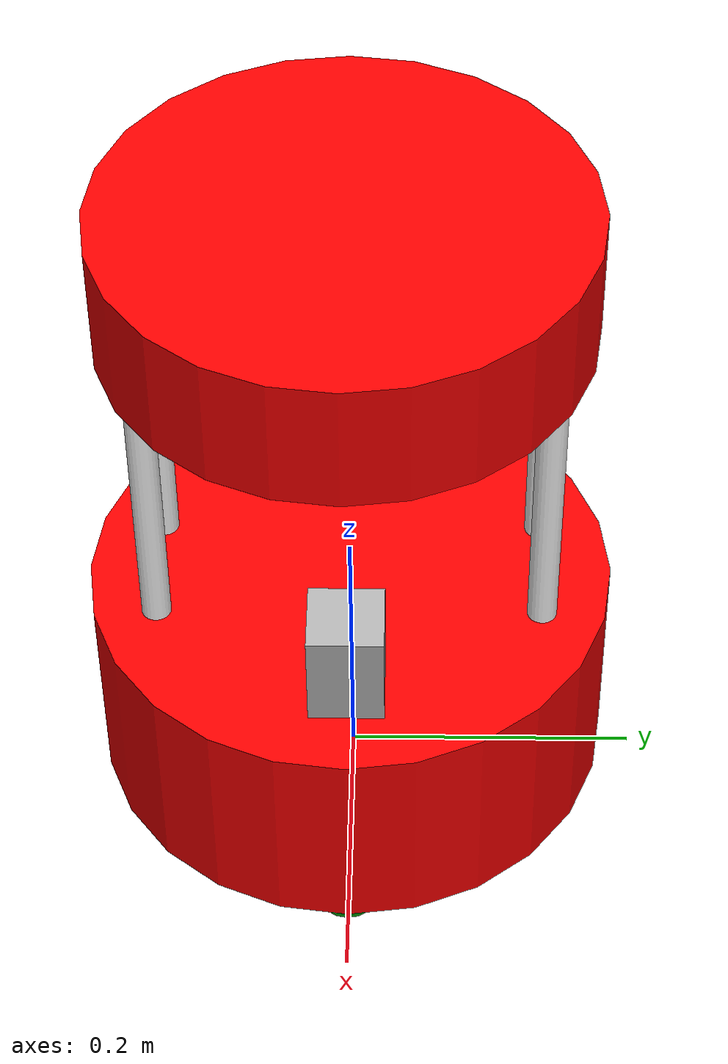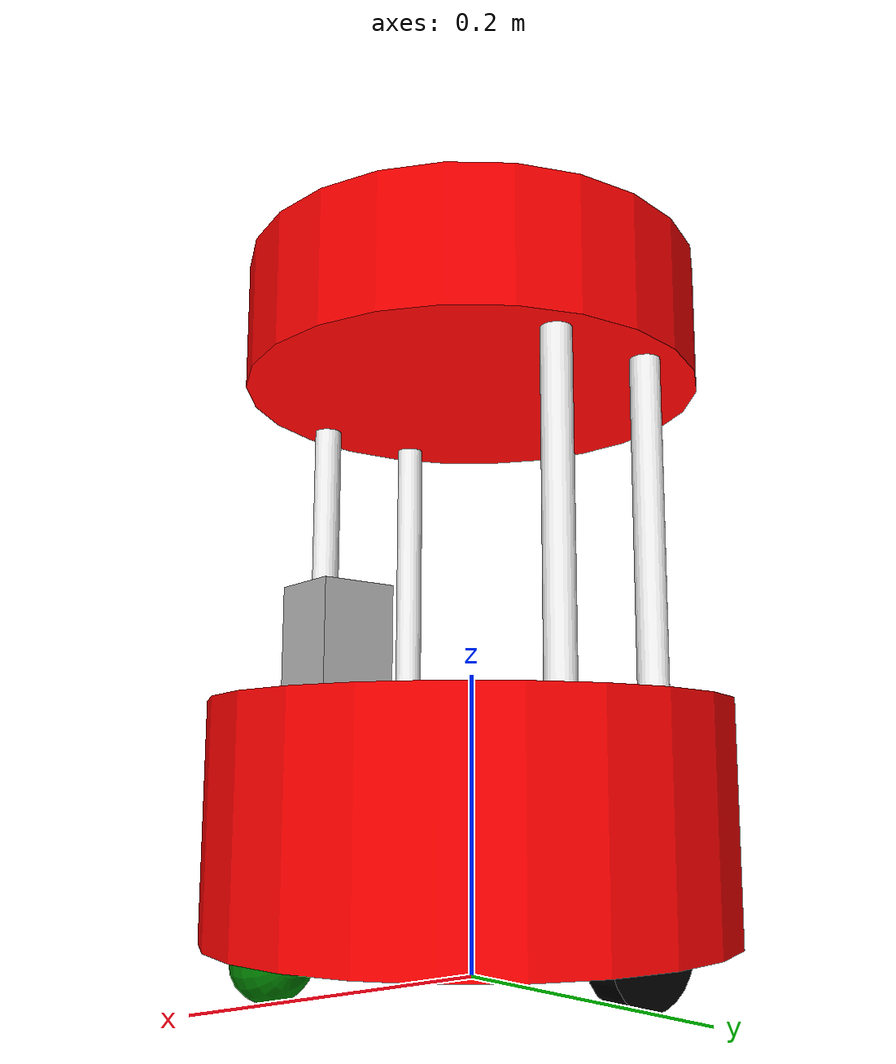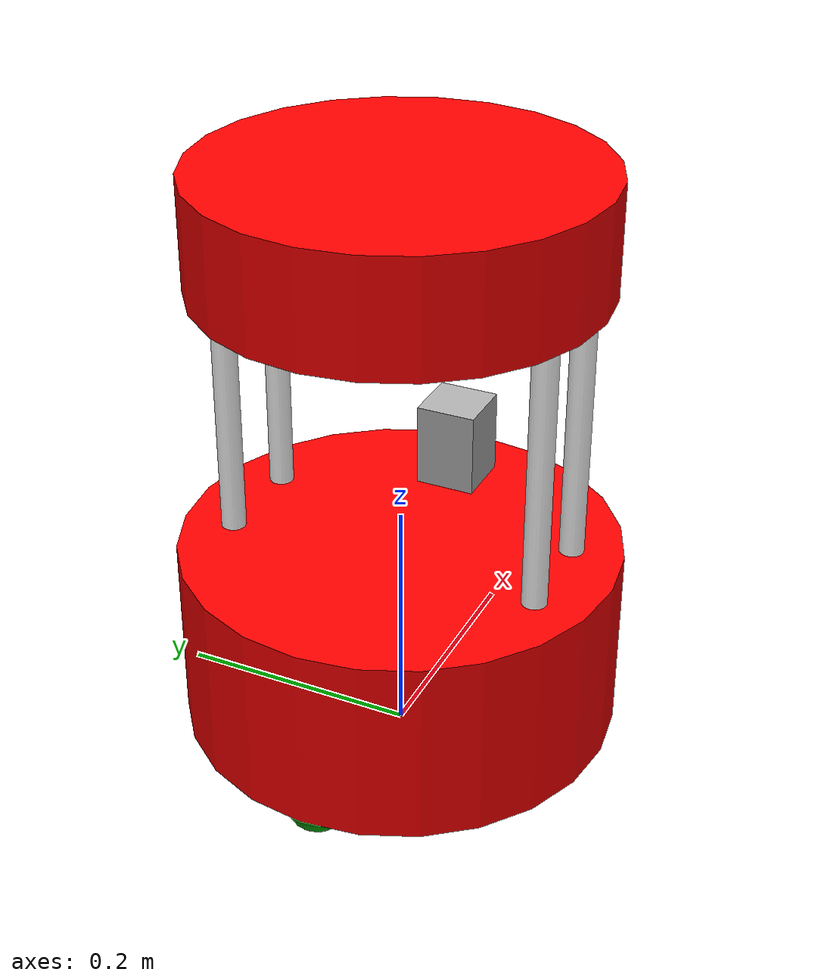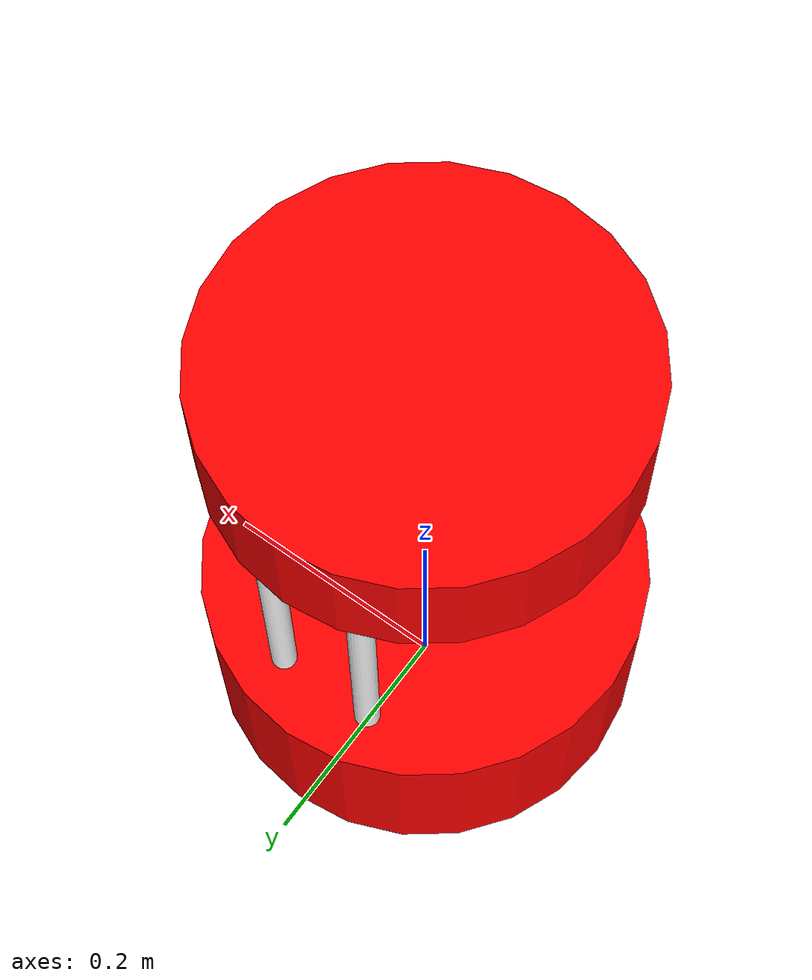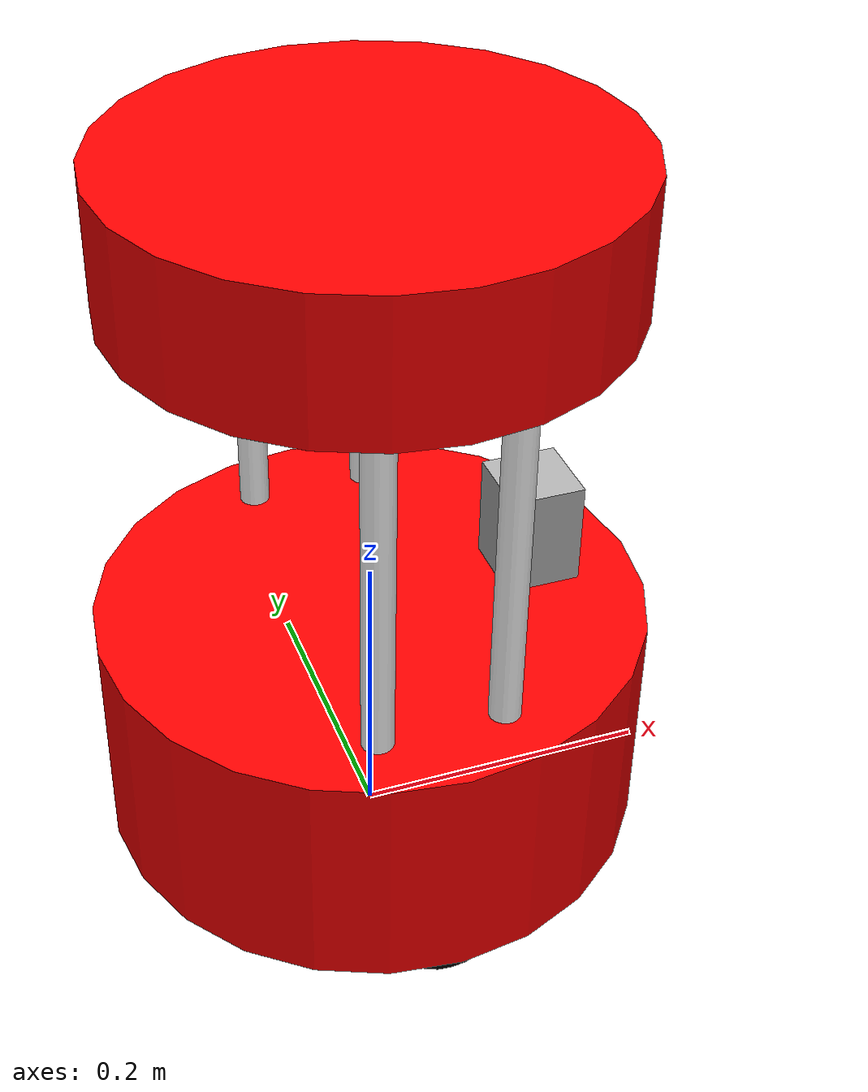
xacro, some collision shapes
<?xml version="1.0"?>
<robot xmlns:xacro="http://www.ros.org/wiki/xacro" name="barista_robot">

  <!-- Arguments -->
  <xacro:arg name="include_laser" default="true"/>
  <xacro:arg name="robot_name" default="rick"/>
  <xacro:arg name="body_color" default="red"/>
  <xacro:arg name="body_gz_material" default="Gazebo/Red"/>

  <!-- Properties -->
  <xacro:property name="robot_name" value="$(arg robot_name)" />
  <xacro:property name="body_color" value="$(arg body_color)" />
  <xacro:property name="body_gz_material" value="$(arg body_gz_material)" />

  <!-- Includes -->
  <xacro:include filename="$(find barista_robot_description)/xacro/materials.xacro" />
  <xacro:include filename="$(find barista_robot_description)/xacro/drive_wheel.xacro" />
  <xacro:include filename="$(find barista_robot_description)/xacro/caster_wheel.xacro" />
  <xacro:include filename="$(find barista_robot_description)/xacro/standoff_rod.xacro" />
  <xacro:include filename="$(find barista_robot_description)/xacro/cup_holder_tray.xacro" />
  <xacro:if value="$(arg include_laser)">
    <xacro:include filename="$(find barista_robot_description)/xacro/laser_scanner.xacro" />
  </xacro:if>

    <link name="base_footprint"/>

    <!-- Main Body-->
    <link name="base_link">
        <visual>
            <geometry>
                <cylinder length="0.155" radius="0.178"/>
            </geometry>
            <material name="${body_color}"/>
        </visual>
        <collision>
            <geometry>
                <cylinder length="0.155" radius="0.178"/>
            </geometry>
        </collision>
        <inertial>
            <mass value="8.0"/>
            <inertia ixx="0.07938466666666666" ixy="0" ixz="0" iyy="0.07938466666666666" iyz="0" izz="0.126736"/>
        </inertial>
    </link>

    <gazebo reference="base_link">
        <material>${body_gz_material}</material>
    </gazebo>

    <joint name="base_footprint_joint" type="fixed">
        <origin xyz="0 0 0.1025" rpy="0 0 0" />  <!-- Clearance 0.025 + Body Height 0.0775-->
        <parent link="base_footprint" />
        <child link="base_link" />
    </joint>

    <!-- Wheel Left -->
    <xacro:drive_wheel name="left_wheel" parent="base_link" xyz="0 0.15 -0.0673" />

    <!-- Wheel Right -->
    <xacro:drive_wheel name="right_wheel" parent="base_link" xyz="0 -0.15 -0.0673" />

    <!-- Front Caster Wheel -->
    <xacro:caster_wheel name="front_caster" parent="base_link" xyz="0.15 0 -0.0775" />

    <!-- Back Caster Wheel -->
    <xacro:caster_wheel name="back_caster" parent="base_link" xyz="-0.15 0 -0.0775" />

    <!-- Standoff Rods Left -->
    <xacro:standoff_rod name="left_front_standoff_rod"
        parent="base_link"
        xyz="0.04 0.13 0.1875"
        length="0.22"
        radius="0.01"
        />
    <xacro:standoff_rod name="left_back_standoff_rod"
        parent="base_link"
        xyz="-0.04 0.13 0.1875"
        length="0.22"
        radius="0.01"
        />
    <!-- Standoff Rods Right-->
    <xacro:standoff_rod name="right_front_standoff_rod"
        parent="base_link"
        xyz="0.04 -0.13 0.1875"
        length="0.22"
        radius="0.01"
        />
    <xacro:standoff_rod name="right_back_standoff_rod"
        parent="base_link"
        xyz="-0.04 -0.13 0.1875"
        length="0.22"
        radius="0.01"
        />

    <!-- Cup Holder Tray -->
    <xacro:cup_holder_tray name="cup_holder_tray"
        parent="base_link"
        xyz="0.0 0.0 0.3425"
        color="${body_color}"
        gz_material="${body_gz_material}" />

    <!-- Planar Laser Scanner -->
    <xacro:if value="$(arg include_laser)">
        <xacro:laser_scanner name="laser_scan" parent="base_link" xyz="0.11 0.0 0.0775" robot_name="${robot_name}" />
    </xacro:if>

    <!-- PLUGINS -->
    <!-- JOINT PUBLISHER -->
    <gazebo>
        <plugin name="barista_robot_joint_state" filename="libgazebo_ros_joint_state_publisher.so">
            <ros>
                <namespace>/${robot_name}</namespace>
                <remapping>~/out:=joint_states</remapping>
            </ros>
            <update_rate>30</update_rate>

            <joint_name>left_wheel_joint</joint_name>
            <joint_name>right_wheel_joint</joint_name>
            <joint_name>front_caster_yaw_joint</joint_name>
            <joint_name>back_caster_yaw_joint</joint_name>
            <joint_name>front_caster_roll_joint</joint_name>
            <joint_name>back_caster_roll_joint</joint_name>
            <joint_name>front_caster_pitch_joint</joint_name>
            <joint_name>back_caster_pitch_joint</joint_name>
        </plugin>
    </gazebo>

    <!-- Differential drive -->
    <gazebo>
        <plugin filename="libgazebo_ros_diff_drive.so" name="differential_drive_controller">
            <ros>
                <namespace>/${robot_name}</namespace>
                <remapping>/cmd_vel:=cmd_vel</remapping>
            </ros>
            <!-- wheels -->
            <left_joint>left_wheel_joint</left_joint>
            <right_joint>right_wheel_joint</right_joint>

            <!-- kinematics -->
            <wheel_separation>0.3</wheel_separation>
            <wheel_diameter>0.0704</wheel_diameter>

            <!-- limits -->
            <max_wheel_torque>10.0</max_wheel_torque>
            <max_wheel_acceleration>2.0</max_wheel_acceleration>

            <!-- output -->
            <publish_odom>true</publish_odom>
            <publish_odom_tf>true</publish_odom_tf>

            <odometry_frame>${robot_name}/odom</odometry_frame>
            <robot_base_frame>${robot_name}/base_footprint</robot_base_frame>
        </plugin>
    </gazebo>

</robot>

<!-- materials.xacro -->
<robot xmlns:xacro="http://www.ros.org/wiki/xacro">

    <material name="red">
        <color rgba="1.0 0.0 0.0 1"/>
    </material>

    <material name="blue">
      <color rgba="0.0 0.0 1.0 1"/>
    </material>

    <material name="black">
        <color rgba="0.0 0.0 0.0 1"/>
    </material>

    <material name="green_light">
      <color rgba="0.0 1.0 0.0 1"/>
    </material>

    <material name="green_dark">
        <color rgba="0.0 0.5 0.0 1"/>
    </material>

    <material name="white">
      <color rgba="1.0 1.0 1.0 1"/>
    </material>

</robot>

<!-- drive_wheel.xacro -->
<robot xmlns:xacro="http://www.ros.org/wiki/xacro">

    <xacro:property name="drive_wheel_radius" value="0.0352"/>
    <xacro:property name="drive_wheel_width" value="0.0206"/>
    <xacro:property name="drive_wheel_mass" value="0.5" />

    <!-- Drive Wheel Macro -->
    <xacro:macro name="drive_wheel" params="name parent xyz">
        <link name="${name}">
            <visual>
                <origin xyz="0 0 0" rpy="1.5707 0 0"/>
                <geometry>
                    <cylinder length="${drive_wheel_width}" radius="${drive_wheel_radius}"/>
                </geometry>
                <material name="black"/>
            </visual>
            <collision>
                <origin xyz="0 0 0" rpy="1.5707 0 0"/>
                <geometry>
                    <cylinder length="${drive_wheel_width}" radius="${drive_wheel_radius}"/>
                </geometry>
            </collision>
            <inertial>
                <origin xyz="0 0 0" rpy="1.5707 0 0"/>
                <mass value="${drive_wheel_mass}"/>
                <inertia
                    ixx="${(1.0/4.0)*drive_wheel_mass*drive_wheel_radius*drive_wheel_radius + (1.0/12.0)*drive_wheel_mass*drive_wheel_width*drive_wheel_width}"
                    ixy="0" ixz="0"
                    iyy="${(1.0/4.0)*drive_wheel_mass*drive_wheel_radius*drive_wheel_radius + (1.0/12.0)*drive_wheel_mass*drive_wheel_width*drive_wheel_width}" iyz="0"
                    izz="${(1.0/2.0)*drive_wheel_mass*drive_wheel_radius*drive_wheel_radius}"/>
            </inertial>
        </link>

        <gazebo reference="${name}">
            <kp>1000000000000000000000000000.0</kp>
            <kd>1000000000000000000000000000.0</kd>
            <mu1>0.8</mu1>
            <mu2>0.6</mu2>
            <material>Gazebo/Black</material>
        </gazebo>

        <joint name="${name}_joint" type="continuous">
            <origin xyz="${xyz}" rpy="0 0 0" />
            <parent link="${parent}" />
            <child link="${name}" />
            <axis xyz="0 1 0" />
            <limit effort="10000" velocity="1000"/>
            <dynamics damping="0.2" friction="1.0"/>
        </joint>
    </xacro:macro>
</robot>

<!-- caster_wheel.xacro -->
<robot xmlns:xacro="http://www.ros.org/wiki/xacro">

    <xacro:property name="caster_axle_radius" value="0.0045"/>
    <xacro:property name="caster_axle_length" value="0.001"/>
    <xacro:property name="caster_axle_mass" value="0.001"/>

    <xacro:property name="caster_wheel_radius" value="0.025"/>
    <xacro:property name="caster_wheel_mass" value="0.25"/>

    <!-- Caster Wheel Macro -->
    <xacro:macro name="caster_wheel" params="name xyz parent">
        <link name="${name}_yaw_link">
            <visual>
                <origin rpy="0 1.5707 1.5707" xyz="0 0 0"/>
                <geometry>
                  <cylinder length="${caster_axle_length}" radius="${caster_axle_radius}"/>
                </geometry>
                <material name="blue"/>
            </visual>

            <collision>
                <origin rpy="0 1.5707 1.5707" xyz="0 0 0"/>
                <geometry>
                   <cylinder length="${caster_axle_length}" radius="${caster_axle_radius}"/>
                </geometry>
            </collision>

            <inertial>
                <origin rpy="0 1.5707 1.5707" xyz="0 0 0"/>
                <mass value="${caster_axle_mass}"/>
                <inertia
                    ixx="${(1.0/12.0)*caster_axle_mass*(3*caster_axle_radius*caster_axle_radius + caster_axle_length*caster_axle_length)}"
                    ixy="0" ixz="0"
                    iyy="${(1.0/12.0)*caster_axle_mass*(3*caster_axle_radius*caster_axle_radius + caster_axle_length*caster_axle_length)}" iyz="0"
                    izz="${(1.0/2.0)*caster_axle_mass*caster_axle_radius*caster_axle_radius}"/>
            </inertial>
        </link>

        <gazebo reference="${name}_yaw_link">
            <material>Gazebo/Blue</material>
        </gazebo>

        <joint name="${name}_yaw_joint" type="continuous">
            <origin xyz="${xyz}" rpy="0 0 0" />
            <parent link="${parent}" />
            <child link="${name}_yaw_link" />
            <axis xyz="0 0 1" />
            <limit effort="1000.0" velocity="100.0" />
            <dynamics damping="0.00" friction="0.1"/>
        </joint>

        <link name="${name}_roll_link">
            <visual>
                <origin rpy="0 1.5707 1.5707" xyz="0 0 0"/>
                <geometry>
                    <cylinder length="${caster_axle_length}" radius="${caster_axle_radius}"/>
                </geometry>
                <material name="red"/>
            </visual>

            <collision>
                <origin rpy="0 1.5707 1.5707" xyz="0 0 0"/>
                <geometry>
                    <cylinder length="${caster_axle_length}" radius="${caster_axle_radius}"/>
                </geometry>
            </collision>

            <inertial>
                <origin rpy="0 1.5707 1.5707" xyz="0 0 0"/>
                <mass value="${caster_axle_mass}"/>
                <inertia
                    ixx="${(1.0/12.0)*caster_axle_mass*(3*caster_axle_radius*caster_axle_radius + caster_axle_length*caster_axle_length)}"
                    ixy="0" ixz="0"
                    iyy="${(1.0/12.0)*caster_axle_mass*(3*caster_axle_radius*caster_axle_radius + caster_axle_length*caster_axle_length)}" iyz="0"
                    izz="${(1.0/2.0)*caster_axle_mass*caster_axle_radius*caster_axle_radius}"/>
            </inertial>
        </link>
        <gazebo reference="${name}_roll_link">
            <material>Gazebo/Red</material>
        </gazebo>

        <joint name="${name}_roll_joint" type="continuous">
            <origin xyz="0 0 0" rpy="0 0 0" />
            <parent link="${name}_yaw_link" />
            <child link="${name}_roll_link" />
            <axis xyz="1 0 0" />
            <limit effort="1000.0" velocity="100.0" />
            <dynamics damping="0.00" friction="0.1"/>
        </joint>

        <link name="${name}_pitch_link">
            <visual>
                <origin rpy="0 1.5707 1.5707" xyz="0 0 0"/>
                <geometry>
                    <sphere radius="${caster_wheel_radius}"/>
                </geometry>
                <material name="green_dark"/>
            </visual>

            <collision>
                <origin rpy="0 1.5707 1.5707" xyz="0 0 0"/>
                <geometry>
                    <sphere radius="${caster_wheel_radius}"/>
                </geometry>
            </collision>

            <inertial>
                <origin rpy="0 1.5707 1.5707" xyz="0 0 0"/>
                <mass value="${caster_wheel_mass}"/>
                <inertia
                    ixx="${(2.0/5.0)*caster_wheel_mass*caster_wheel_radius*caster_wheel_radius}"
                    ixy="0" ixz="0"
                    iyy="${(2.0/5.0)*caster_wheel_mass*caster_wheel_radius*caster_wheel_radius}" iyz="0"
                    izz="${(2.0/5.0)*caster_wheel_mass*caster_wheel_radius*caster_wheel_radius}"/>
            </inertial>
        </link>

        <gazebo reference="${name}_pitch_link">
            <kp>1000000000000000000000000000.0</kp>
            <kd>1000000000000000000000000000.0</kd>
            <mu1>0.2</mu1>
            <mu2>0.2</mu2>
            <material>Gazebo/Green</material>
        </gazebo>

        <joint name="${name}_pitch_joint" type="continuous">
            <origin xyz="0 0 0" rpy="0 0 0" />
            <parent link="${name}_roll_link" />
            <child link="${name}_pitch_link" />
            <axis xyz="0 1 0" />
            <limit effort="1000.0" velocity="100.0" />
            <dynamics damping="0.00" friction="0.1"/>
        </joint>

    </xacro:macro>
</robot>

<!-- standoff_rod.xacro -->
<robot xmlns:xacro="http://www.ros.org/wiki/xacro">

    <xacro:property name="standoff_rod_mass" value="0.1" />

    <!-- Stnadoff Rod Macro -->
    <xacro:macro name="standoff_rod" params="name parent xyz radius length">
        <link name="${name}">
            <visual>
                <geometry>
                    <cylinder length="${length}" radius="${radius}"/>
                </geometry>
                <material name="white"/>
            </visual>
            <collision>
                <geometry>
                    <cylinder length="${length}" radius="${radius}"/>
                </geometry>
            </collision>
            <inertial>
                <mass value="${standoff_rod_mass}"/>
                <inertia
                    ixx="${(1.0/12.0)*standoff_rod_mass*(3*radius*radius + length*length)}"
                    ixy="0" ixz="0"
                    iyy="${(1.0/12.0)*standoff_rod_mass*(3*radius*radius + length*length)}" iyz="0"
                    izz="${(1.0/2.0)*standoff_rod_mass*radius*radius}"/>
            </inertial>
        </link>
        <gazebo reference="${name}">
            <material>Gazebo/White</material>
        </gazebo>
        <joint name="${name}_joint" type="fixed">
            <origin xyz="${xyz}" rpy="0 0 0" />
            <parent link="${parent}" />
            <child link="${name}" />
        </joint>
    </xacro:macro>

</robot>

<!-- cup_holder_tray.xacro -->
<robot xmlns:xacro="http://www.ros.org/wiki/xacro">

    <xacro:property name="cup_holder_mass" value="1.0" />
    <xacro:property name="cup_holder_radius" value="0.16" />
    <xacro:property name="cup_holder_length" value="0.09" />

    <!-- Cup Holder Tray Wheel Macro -->
    <xacro:macro name="cup_holder_tray" params="name parent xyz color gz_material">
       <link name="${name}">
            <visual>
                <geometry>
                    <cylinder length="${cup_holder_length}" radius="${cup_holder_radius}"/>
                </geometry>
                <material name="${color}"/>
            </visual>
            <collision>
                <geometry>
                    <cylinder length="${cup_holder_length}" radius="${cup_holder_radius}"/>
                </geometry>
            </collision>
           <inertial>
                <mass value="${cup_holder_mass}"/>
                <inertia
                    ixx="${(1.0/12.0)*cup_holder_mass*(3*cup_holder_radius*cup_holder_radius + cup_holder_length*cup_holder_length)}"
                    ixy="0" ixz="0"
                    iyy="${(1.0/12.0)*cup_holder_mass*(3*cup_holder_radius*cup_holder_radius + cup_holder_length*cup_holder_length)}" iyz="0"
                    izz="${(1.0/2.0)*cup_holder_mass*cup_holder_radius*cup_holder_radius}"/>
            </inertial>
        </link>
        <gazebo reference="${name}">
            <material>${gz_material}</material>
        </gazebo>
        <joint name="${name}_joint" type="fixed">
            <origin xyz="${xyz}" rpy="0 0 0" />
            <parent link="${parent}" />
            <child link="${name}" />
        </joint>
    </xacro:macro>

</robot>

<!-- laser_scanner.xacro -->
<robot xmlns:xacro="http://www.ros.org/wiki/xacro">

    <xacro:property name="laser_scan_length" value="0.05"/>
    <xacro:property name="laser_scan_width" value="0.05"/>
    <xacro:property name="laser_scan_height" value="0.07"/>
    <xacro:property name="laser_scan_mass" value="0.13" />

    <xacro:macro name="laser_scanner" params="name parent xyz robot_name">
        <link name="${name}">
            <visual>
                <geometry>
                    <mesh filename="package://barista_robot_description/meshes/hokuyo_ust_10lx.dae" scale="1.0 1.0 1.0"/>
                </geometry>
            </visual>
            <collision>
                <origin xyz="0 0 ${laser_scan_height/2}" rpy="0 0 0"/>
                <geometry>
                    <box size="${laser_scan_length} ${laser_scan_width} ${laser_scan_height}"/>
                </geometry>
            </collision>
            <inertial>
                <origin xyz="0 0 ${laser_scan_height/2}" rpy="0 0 0"/>
                <mass value="${laser_scan_mass}"/>
                <inertia
                    ixx="${(1.0/12.0)*laser_scan_mass*(laser_scan_width*laser_scan_width + laser_scan_height*laser_scan_height)}"
                    ixy="0" ixz="0"
                    iyy="${(1.0/12.0)*laser_scan_mass*(laser_scan_length*laser_scan_length + laser_scan_height*laser_scan_height)}" iyz="0"
                    izz="${(1.0/12.0)*laser_scan_mass*(laser_scan_length*laser_scan_length + laser_scan_width*laser_scan_width)}"/>
            </inertial>
        </link>

        <joint name="${name}_joint" type="fixed">
            <origin xyz="${xyz}" rpy="0 0 0" />
            <parent link="${parent}"/>
            <child link="${name}"/>
        </joint>

        <link name="${name}_frame">
        </link>

        <joint name="${name}_frame_joint" type="fixed">
            <origin xyz="0.025 0 0.05" rpy="0 0 0" />
            <parent link="${name}"/>
            <child link="${name}_frame"/>
        </joint>

        <gazebo reference="${name}_frame">
            <sensor name="${name}_sensor" type="ray">
                <pose>0 0 0 0 0 0</pose>
                <always_on>true</always_on>
                <visualize>true</visualize>
                <update_rate>100.0</update_rate>
                <ray>
                    <scan>
                        <horizontal>
                            <samples>720</samples>
                            <resolution>1.0</resolution>
                            <min_angle>-3.14</min_angle>
                            <max_angle>3.14</max_angle>
                        </horizontal>
                        <vertical>
                            <samples>1</samples>
                            <resolution>1.0</resolution>
                            <min_angle>0.0</min_angle>
                            <max_angle>0.0</max_angle>
                        </vertical>
                    </scan>
                    <range>
                        <min>0.1</min>
                        <max>10.0</max>
                    </range>
                </ray>
                <plugin name="laser" filename="libgazebo_ros_ray_sensor.so">
                    <ros>
                        <namespace>${robot_name}</namespace>
                        <remapping>~/out:=scan</remapping>
                    </ros>
                    <output_type>sensor_msgs/LaserScan</output_type>
                    <frame_name>${robot_name}/${name}_frame</frame_name>
                </plugin>
            </sensor>
	    </gazebo>
    </xacro:macro>

</robot>
